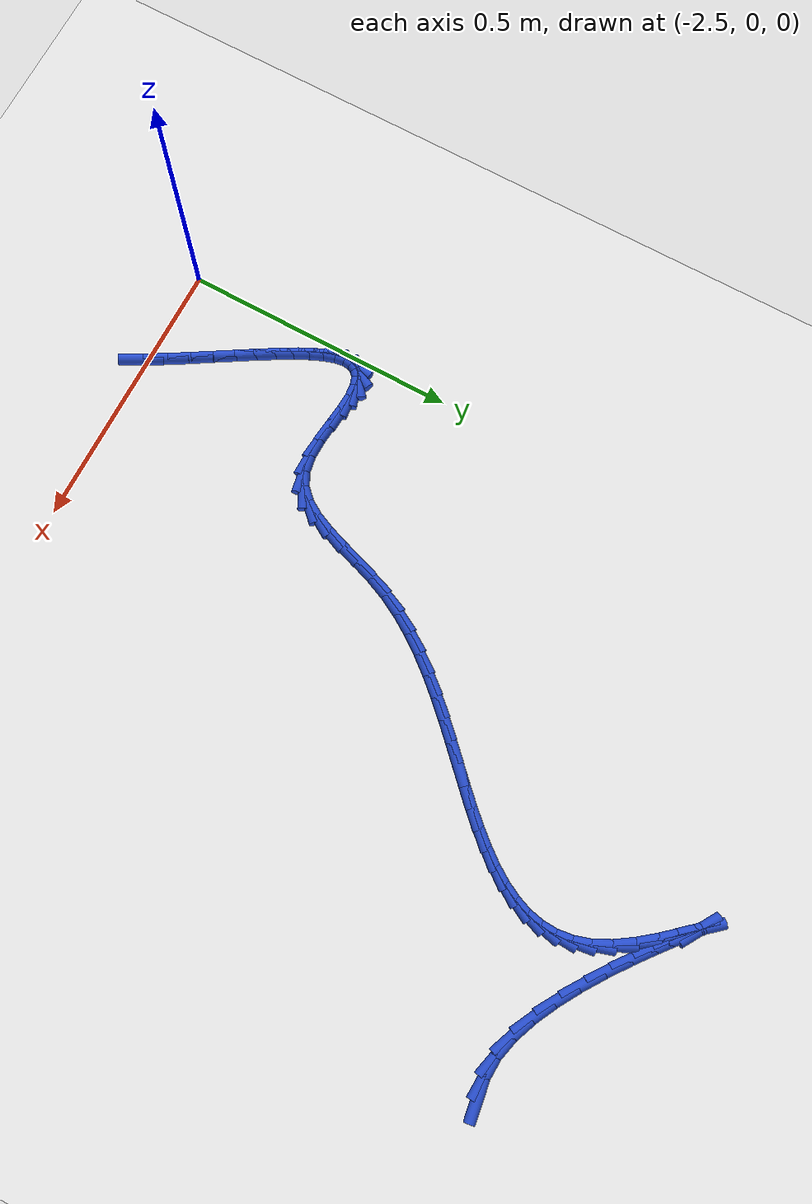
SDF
<sdf version="1.6">
 <world name="default">
  <model name="ground_plane">
   <static>1</static>
   <link name="link">
    <collision name="collision">
     <geometry><plane><normal>0 0 1</normal><size>100 100</size></plane></geometry>
     <surface><friction><ode><mu>100</mu><mu2>50</mu2></ode></friction></surface>
    </collision>
    <visual name="visual">
     <cast_shadows>0</cast_shadows>
     <geometry><plane><normal>0 0 1</normal><size>100 100</size></plane></geometry>
     <material>
      <script><uri>file://media/materials/scripts/gazebo.material</uri><name>Gazebo/WhiteGlow</name></script>
     </material>
    </visual>
   </link>
  </model>
  <model name="line">
   <link name="link_65">
    <pose>-1.4952323141825306 1.088143773224283 0.01 0 1.57 0.14863840914152304</pose>
    <collision name="collision">
     <geometry><cylinder><radius>0.01</radius><length>0.08</length></cylinder></geometry>
    </collision>
    <visual name="visual">
     <material>
      <script><name>Gazebo/Blue</name><uri>file://media/materials/scripts/gazebo.material</uri></script>
     </material>
     <geometry><cylinder><radius>0.01</radius><length>0.08</length></cylinder></geometry>
    </visual>
   </link>
   <link name="link_66">
    <pose>-1.5288726791281757 1.0831063703935677 0.01 0 1.57 -0.04080445315504187</pose>
    <collision name="collision">
     <geometry><cylinder><radius>0.01</radius><length>0.08</length></cylinder></geometry>
    </collision>
    <visual name="visual">
     <material>
      <script><name>Gazebo/Blue</name><uri>file://media/materials/scripts/gazebo.material</uri></script>
     </material>
     <geometry><cylinder><radius>0.01</radius><length>0.08</length></cylinder></geometry>
    </visual>
   </link>
   <link name="link_67">
    <pose>-1.5649392740859536 1.084578865405111 0.01 0 1.57 -0.2337654186073965</pose>
    <collision name="collision">
     <geometry><cylinder><radius>0.01</radius><length>0.08</length></cylinder></geometry>
    </collision>
    <visual name="visual">
     <material>
      <script><name>Gazebo/Blue</name><uri>file://media/materials/scripts/gazebo.material</uri></script>
     </material>
     <geometry><cylinder><radius>0.01</radius><length>0.08</length></cylinder></geometry>
    </visual>
   </link>
   <link name="link_68">
    <pose>-1.6037393155495658 1.0938178822584899 0.01 0 1.57 -0.37672906411097346</pose>
    <collision name="collision">
     <geometry><cylinder><radius>0.01</radius><length>0.08</length></cylinder></geometry>
    </collision>
    <visual name="visual">
     <material>
      <script><name>Gazebo/Blue</name><uri>file://media/materials/scripts/gazebo.material</uri></script>
     </material>
     <geometry><cylinder><radius>0.01</radius><length>0.08</length></cylinder></geometry>
    </visual>
   </link>
   <link name="link_69">
    <pose>-1.6444657523950652 1.1099302750295739 0.01 0 1.57 -0.4747867884725967</pose>
    <collision name="collision">
     <geometry><cylinder><radius>0.01</radius><length>0.08</length></cylinder></geometry>
    </collision>
    <visual name="visual">
     <material>
      <script><name>Gazebo/Blue</name><uri>file://media/materials/scripts/gazebo.material</uri></script>
     </material>
     <geometry><cylinder><radius>0.01</radius><length>0.08</length></cylinder></geometry>
    </visual>
   </link>
   <link name="link_70">
    <pose>-1.6858990548762667 1.1312270978246173 0.01 0 1.57 -0.544703677572929</pose>
    <collision name="collision">
     <geometry><cylinder><radius>0.01</radius><length>0.08</length></cylinder></geometry>
    </collision>
    <visual name="visual">
     <material>
      <script><name>Gazebo/Blue</name><uri>file://media/materials/scripts/gazebo.material</uri></script>
     </material>
     <geometry><cylinder><radius>0.01</radius><length>0.08</length></cylinder></geometry>
    </visual>
   </link>
   <link name="link_71">
    <pose>-1.7268190248066024 1.1560181151197997 0.01 0 1.57 -0.5962721454302685</pose>
    <collision name="collision">
     <geometry><cylinder><radius>0.01</radius><length>0.08</length></cylinder></geometry>
    </collision>
    <visual name="visual">
     <material>
      <script><name>Gazebo/Blue</name><uri>file://media/materials/scripts/gazebo.material</uri></script>
     </material>
     <geometry><cylinder><radius>0.01</radius><length>0.08</length></cylinder></geometry>
    </visual>
   </link>
   <link name="link_72">
    <pose>-1.7660054639995024 1.1826130913912998 0.01 0 1.57 -0.6352219180496846</pose>
    <collision name="collision">
     <geometry><cylinder><radius>0.01</radius><length>0.08</length></cylinder></geometry>
    </collision>
    <visual name="visual">
     <material>
      <script><name>Gazebo/Blue</name><uri>file://media/materials/scripts/gazebo.material</uri></script>
     </material>
     <geometry><cylinder><radius>0.01</radius><length>0.08</length></cylinder></geometry>
    </visual>
   </link>
   <link name="link_73">
    <pose>-1.802238174268398 1.2093217911152956 0.01 0 1.57 -0.6648717432445969</pose>
    <collision name="collision">
     <geometry><cylinder><radius>0.01</radius><length>0.08</length></cylinder></geometry>
    </collision>
    <visual name="visual">
     <material>
      <script><name>Gazebo/Blue</name><uri>file://media/materials/scripts/gazebo.material</uri></script>
     </material>
     <geometry><cylinder><radius>0.01</radius><length>0.08</length></cylinder></geometry>
    </visual>
   </link>
   <link name="link_74">
    <pose>-1.8342969574267207 1.2344539787679671 0.01 0 1.57 -0.6868270817080524</pose>
    <collision name="collision">
     <geometry><cylinder><radius>0.01</radius><length>0.08</length></cylinder></geometry>
    </collision>
    <visual name="visual">
     <material>
      <script><name>Gazebo/Blue</name><uri>file://media/materials/scripts/gazebo.material</uri></script>
     </material>
     <geometry><cylinder><radius>0.01</radius><length>0.08</length></cylinder></geometry>
    </visual>
   </link>
   <link name="link_75">
    <pose>-1.8609616152879005 1.2563194188254925 0.01 0 1.57 -0.7005917761581065</pose>
    <collision name="collision">
     <geometry><cylinder><radius>0.01</radius><length>0.08</length></cylinder></geometry>
    </collision>
    <visual name="visual">
     <material>
      <script><name>Gazebo/Blue</name><uri>file://media/materials/scripts/gazebo.material</uri></script>
     </material>
     <geometry><cylinder><radius>0.01</radius><length>0.08</length></cylinder></geometry>
    </visual>
   </link>
   <link name="link_76">
    <pose>-1.8810119496653688 1.2732278757640503 0.01 0 1.57 -0.6986576947608345</pose>
    <collision name="collision">
     <geometry><cylinder><radius>0.01</radius><length>0.08</length></cylinder></geometry>
    </collision>
    <visual name="visual">
     <material>
      <script><name>Gazebo/Blue</name><uri>file://media/materials/scripts/gazebo.material</uri></script>
     </material>
     <geometry><cylinder><radius>0.01</radius><length>0.08</length></cylinder></geometry>
    </visual>
   </link>
   <link name="link_77">
    <pose>-1.893227762372557 1.2834891140598201 0.01 0 1.57 -0.5467058913655953</pose>
    <collision name="collision">
     <geometry><cylinder><radius>0.01</radius><length>0.08</length></cylinder></geometry>
    </collision>
    <visual name="visual">
     <material>
      <script><name>Gazebo/Blue</name><uri>file://media/materials/scripts/gazebo.material</uri></script>
     </material>
     <geometry><cylinder><radius>0.01</radius><length>0.08</length></cylinder></geometry>
    </visual>
   </link>
   <link name="link_78">
    <pose>-1.8963888552228956 1.28541289818898 0.01 0 1.57 -0.8507442898011937</pose>
    <collision name="collision">
     <geometry><cylinder><radius>0.01</radius><length>0.08</length></cylinder></geometry>
    </collision>
    <visual name="visual">
     <material>
      <script><name>Gazebo/Blue</name><uri>file://media/materials/scripts/gazebo.material</uri></script>
     </material>
     <geometry><cylinder><radius>0.01</radius><length>0.08</length></cylinder></geometry>
    </visual>
   </link>
   <link name="link_79">
    <pose>-1.8892967962554643 1.2773276466880934 0.01 0 1.57 -0.8279606788155391</pose>
    <collision name="collision">
     <geometry><cylinder><radius>0.01</radius><length>0.08</length></cylinder></geometry>
    </collision>
    <visual name="visual">
     <material>
      <script><name>Gazebo/Blue</name><uri>file://media/materials/scripts/gazebo.material</uri></script>
     </material>
     <geometry><cylinder><radius>0.01</radius><length>0.08</length></cylinder></geometry>
    </visual>
   </link>
   <link name="link_80">
    <pose>-1.8725963171163258 1.2591414036005881 0.01 0 1.57 -0.8513580426529674</pose>
    <collision name="collision">
     <geometry><cylinder><radius>0.01</radius><length>0.08</length></cylinder></geometry>
    </collision>
    <visual name="visual">
     <material>
      <script><name>Gazebo/Blue</name><uri>file://media/materials/scripts/gazebo.material</uri></script>
     </material>
     <geometry><cylinder><radius>0.01</radius><length>0.08</length></cylinder></geometry>
    </visual>
   </link>
   <link name="link_81">
    <pose>-1.8501501253995605 1.2335200782341098 0.01 0 1.57 -0.8977788510176192</pose>
    <collision name="collision">
     <geometry><cylinder><radius>0.01</radius><length>0.08</length></cylinder></geometry>
    </collision>
    <visual name="visual">
     <material>
      <script><name>Gazebo/Blue</name><uri>file://media/materials/scripts/gazebo.material</uri></script>
     </material>
     <geometry><cylinder><radius>0.01</radius><length>0.08</length></cylinder></geometry>
    </visual>
   </link>
   <link name="link_82">
    <pose>-1.826144719080286 1.2034070742776062 0.01 0 1.57 -0.9768980740927216</pose>
    <collision name="collision">
     <geometry><cylinder><radius>0.01</radius><length>0.08</length></cylinder></geometry>
    </collision>
    <visual name="visual">
     <material>
      <script><name>Gazebo/Blue</name><uri>file://media/materials/scripts/gazebo.material</uri></script>
     </material>
     <geometry><cylinder><radius>0.01</radius><length>0.08</length></cylinder></geometry>
    </visual>
   </link>
   <link name="link_83">
    <pose>-1.8047664356165989 1.1717456892720026 0.01 0 1.57 -1.1059233749537078</pose>
    <collision name="collision">
     <geometry><cylinder><radius>0.01</radius><length>0.08</length></cylinder></geometry>
    </collision>
    <visual name="visual">
     <material>
      <script><name>Gazebo/Blue</name><uri>file://media/materials/scripts/gazebo.material</uri></script>
     </material>
     <geometry><cylinder><radius>0.01</radius><length>0.08</length></cylinder></geometry>
    </visual>
   </link>
   <link name="link_84">
    <pose>-1.7892817275521453 1.1408709116420577 0.01 0 1.57 -1.2649261991113017</pose>
    <collision name="collision">
     <geometry><cylinder><radius>0.01</radius><length>0.08</length></cylinder></geometry>
    </collision>
    <visual name="visual">
     <material>
      <script><name>Gazebo/Blue</name><uri>file://media/materials/scripts/gazebo.material</uri></script>
     </material>
     <geometry><cylinder><radius>0.01</radius><length>0.08</length></cylinder></geometry>
    </visual>
   </link>
   <link name="link_85">
    <pose>-1.7798740317023674 1.1110789676333859 0.01 0 1.57 -1.440046391044502</pose>
    <collision name="collision">
     <geometry><cylinder><radius>0.01</radius><length>0.08</length></cylinder></geometry>
    </collision>
    <visual name="visual">
     <material>
      <script><name>Gazebo/Blue</name><uri>file://media/materials/scripts/gazebo.material</uri></script>
     </material>
     <geometry><cylinder><radius>0.01</radius><length>0.08</length></cylinder></geometry>
    </visual>
   </link>
   <link name="link_86">
    <pose>-1.7760816310046459 1.0822394507909352 0.01 0 1.57 1.5222513761128595</pose>
    <collision name="collision">
     <geometry><cylinder><radius>0.01</radius><length>0.08</length></cylinder></geometry>
    </collision>
    <visual name="visual">
     <material>
      <script><name>Gazebo/Blue</name><uri>file://media/materials/scripts/gazebo.material</uri></script>
     </material>
     <geometry><cylinder><radius>0.01</radius><length>0.08</length></cylinder></geometry>
    </visual>
   </link>
   <link name="link_87">
    <pose>-1.7774428083963647 1.0542219546596556 0.01 0 1.57 1.3528033173011629</pose>
    <collision name="collision">
     <geometry><cylinder><radius>0.01</radius><length>0.08</length></cylinder></geometry>
    </collision>
    <visual name="visual">
     <material>
      <script><name>Gazebo/Blue</name><uri>file://media/materials/scripts/gazebo.material</uri></script>
     </material>
     <geometry><cylinder><radius>0.01</radius><length>0.08</length></cylinder></geometry>
    </visual>
   </link>
   <link name="link_88">
    <pose>-1.7834958468149062 1.026896072784496 0.01 0 1.57 1.2039780633169195</pose>
    <collision name="collision">
     <geometry><cylinder><radius>0.01</radius><length>0.08</length></cylinder></geometry>
    </collision>
    <visual name="visual">
     <material>
      <script><name>Gazebo/Blue</name><uri>file://media/materials/scripts/gazebo.material</uri></script>
     </material>
     <geometry><cylinder><radius>0.01</radius><length>0.08</length></cylinder></geometry>
    </visual>
   </link>
   <link name="link_89">
    <pose>-1.7937790291976528 1.0001313987104055 0.01 0 1.57 1.0806357029912346</pose>
    <collision name="collision">
     <geometry><cylinder><radius>0.01</radius><length>0.08</length></cylinder></geometry>
    </collision>
    <visual name="visual">
     <material>
      <script><name>Gazebo/Blue</name><uri>file://media/materials/scripts/gazebo.material</uri></script>
     </material>
     <geometry><cylinder><radius>0.01</radius><length>0.08</length></cylinder></geometry>
    </visual>
   </link>
   <link name="link_90">
    <pose>-1.8078306384819864 0.9737975259823336 0.01 0 1.57 0.9827227969631482</pose>
    <collision name="collision">
     <geometry><cylinder><radius>0.01</radius><length>0.08</length></cylinder></geometry>
    </collision>
    <visual name="visual">
     <material>
      <script><name>Gazebo/Blue</name><uri>file://media/materials/scripts/gazebo.material</uri></script>
     </material>
     <geometry><cylinder><radius>0.01</radius><length>0.08</length></cylinder></geometry>
    </visual>
   </link>
   <link name="link_91">
    <pose>-1.8251889576052907 0.94776404814523 0.01 0 1.57 0.907654303068371</pose>
    <collision name="collision">
     <geometry><cylinder><radius>0.01</radius><length>0.08</length></cylinder></geometry>
    </collision>
    <visual name="visual">
     <material>
      <script><name>Gazebo/Blue</name><uri>file://media/materials/scripts/gazebo.material</uri></script>
     </material>
     <geometry><cylinder><radius>0.01</radius><length>0.08</length></cylinder></geometry>
    </visual>
   </link>
   <link name="link_92">
    <pose>-1.8453922695049472 0.9219005587440424 0.01 0 1.57 0.8521710202685989</pose>
    <collision name="collision">
     <geometry><cylinder><radius>0.01</radius><length>0.08</length></cylinder></geometry>
    </collision>
    <visual name="visual">
     <material>
      <script><name>Gazebo/Blue</name><uri>file://media/materials/scripts/gazebo.material</uri></script>
     </material>
     <geometry><cylinder><radius>0.01</radius><length>0.08</length></cylinder></geometry>
    </visual>
   </link>
   <link name="link_93">
    <pose>-1.8679788571183393 0.8960766513237215 0.01 0 1.57 0.813286713102715</pose>
    <collision name="collision">
     <geometry><cylinder><radius>0.01</radius><length>0.08</length></cylinder></geometry>
    </collision>
    <visual name="visual">
     <material>
      <script><name>Gazebo/Blue</name><uri>file://media/materials/scripts/gazebo.material</uri></script>
     </material>
     <geometry><cylinder><radius>0.01</radius><length>0.08</length></cylinder></geometry>
    </visual>
   </link>
   <link name="link_94">
    <pose>-1.8924870033828485 0.8701619194292155 0.01 0 1.57 0.7886219954989145</pose>
    <collision name="collision">
     <geometry><cylinder><radius>0.01</radius><length>0.08</length></cylinder></geometry>
    </collision>
    <visual name="visual">
     <material>
      <script><name>Gazebo/Blue</name><uri>file://media/materials/scripts/gazebo.material</uri></script>
     </material>
     <geometry><cylinder><radius>0.01</radius><length>0.08</length></cylinder></geometry>
    </visual>
   </link>
   <link name="link_95">
    <pose>-1.918454991235858 0.8440259566054742 0.01 0 1.57 0.7764465047337329</pose>
    <collision name="collision">
     <geometry><cylinder><radius>0.01</radius><length>0.08</length></cylinder></geometry>
    </collision>
    <visual name="visual">
     <material>
      <script><name>Gazebo/Blue</name><uri>file://media/materials/scripts/gazebo.material</uri></script>
     </material>
     <geometry><cylinder><radius>0.01</radius><length>0.08</length></cylinder></geometry>
    </visual>
   </link>
   <link name="link_96">
    <pose>-1.9454211036147502 0.8175383563974465 0.01 0 1.57 0.7756159414451039</pose>
    <collision name="collision">
     <geometry><cylinder><radius>0.01</radius><length>0.08</length></cylinder></geometry>
    </collision>
    <visual name="visual">
     <material>
      <script><name>Gazebo/Blue</name><uri>file://media/materials/scripts/gazebo.material</uri></script>
     </material>
     <geometry><cylinder><radius>0.01</radius><length>0.08</length></cylinder></geometry>
    </visual>
   </link>
   <link name="link_97">
    <pose>-1.972923623456908 0.790568712350082 0.01 0 1.57 0.7854867087293953</pose>
    <collision name="collision">
     <geometry><cylinder><radius>0.01</radius><length>0.08</length></cylinder></geometry>
    </collision>
    <visual name="visual">
     <material>
      <script><name>Gazebo/Blue</name><uri>file://media/materials/scripts/gazebo.material</uri></script>
     </material>
     <geometry><cylinder><radius>0.01</radius><length>0.08</length></cylinder></geometry>
    </visual>
   </link>
   <link name="link_98">
    <pose>-2.0005008336997134 0.7629866180083295 0.01 0 1.57 0.8058360045946583</pose>
    <collision name="collision">
     <geometry><cylinder><radius>0.01</radius><length>0.08</length></cylinder></geometry>
    </collision>
    <visual name="visual">
     <material>
      <script><name>Gazebo/Blue</name><uri>file://media/materials/scripts/gazebo.material</uri></script>
     </material>
     <geometry><cylinder><radius>0.01</radius><length>0.08</length></cylinder></geometry>
    </visual>
   </link>
   <link name="link_99">
    <pose>-2.0276910172805485 0.7346616669171381 0.01 0 1.57 0.8367895351429446</pose>
    <collision name="collision">
     <geometry><cylinder><radius>0.01</radius><length>0.08</length></cylinder></geometry>
    </collision>
    <visual name="visual">
     <material>
      <script><name>Gazebo/Blue</name><uri>file://media/materials/scripts/gazebo.material</uri></script>
     </material>
     <geometry><cylinder><radius>0.01</radius><length>0.08</length></cylinder></geometry>
    </visual>
   </link>
   <link name="link_100">
    <pose>-2.054032457136797 0.7054634526214576 0.01 0 1.57 0.8787461518988959</pose>
    <collision name="collision">
     <geometry><cylinder><radius>0.01</radius><length>0.08</length></cylinder></geometry>
    </collision>
    <visual name="visual">
     <material>
      <script><name>Gazebo/Blue</name><uri>file://media/materials/scripts/gazebo.material</uri></script>
     </material>
     <geometry><cylinder><radius>0.01</radius><length>0.08</length></cylinder></geometry>
    </visual>
   </link>
   <link name="link_101">
    <pose>-2.0790634362058404 0.6752615686662365 0.01 0 1.57 0.9322801814065428</pose>
    <collision name="collision">
     <geometry><cylinder><radius>0.01</radius><length>0.08</length></cylinder></geometry>
    </collision>
    <visual name="visual">
     <material>
      <script><name>Gazebo/Blue</name><uri>file://media/materials/scripts/gazebo.material</uri></script>
     </material>
     <geometry><cylinder><radius>0.01</radius><length>0.08</length></cylinder></geometry>
    </visual>
   </link>
   <link name="link_102">
    <pose>-2.102322237425062 0.6439256085964251 0.01 0 1.57 0.9979956198062797</pose>
    <collision name="collision">
     <geometry><cylinder><radius>0.01</radius><length>0.08</length></cylinder></geometry>
    </collision>
    <visual name="visual">
     <material>
      <script><name>Gazebo/Blue</name><uri>file://media/materials/scripts/gazebo.material</uri></script>
     </material>
     <geometry><cylinder><radius>0.01</radius><length>0.08</length></cylinder></geometry>
    </visual>
   </link>
   <link name="link_103">
    <pose>-2.123347143731843 0.6113251659569713 0.01 0 1.57 1.0763051854492525</pose>
    <collision name="collision">
     <geometry><cylinder><radius>0.01</radius><length>0.08</length></cylinder></geometry>
    </collision>
    <visual name="visual">
     <material>
      <script><name>Gazebo/Blue</name><uri>file://media/materials/scripts/gazebo.material</uri></script>
     </material>
     <geometry><cylinder><radius>0.01</radius><length>0.08</length></cylinder></geometry>
    </visual>
   </link>
   <link name="link_104">
    <pose>-2.1416764380635684 0.577329834292825 0.01 0 1.57 1.1635208819083311</pose>
    <collision name="collision">
     <geometry><cylinder><radius>0.01</radius><length>0.08</length></cylinder></geometry>
    </collision>
    <visual name="visual">
     <material>
      <script><name>Gazebo/Blue</name><uri>file://media/materials/scripts/gazebo.material</uri></script>
     </material>
     <geometry><cylinder><radius>0.01</radius><length>0.08</length></cylinder></geometry>
    </visual>
   </link>
   <link name="link_105">
    <pose>-2.1569602011742504 0.54190120153566 0.01 0 1.57 1.2265846920467955</pose>
    <collision name="collision">
     <geometry><cylinder><radius>0.01</radius><length>0.08</length></cylinder></geometry>
    </collision>
    <visual name="visual">
     <material>
      <script><name>Gazebo/Blue</name><uri>file://media/materials/scripts/gazebo.material</uri></script>
     </material>
     <geometry><cylinder><radius>0.01</radius><length>0.08</length></cylinder></geometry>
    </visual>
   </link>
   <link name="link_106">
    <pose>-2.169883137722879 0.505852210272328 0.01 0 1.57 1.2488353614568997</pose>
    <collision name="collision">
     <geometry><cylinder><radius>0.01</radius><length>0.08</length></cylinder></geometry>
    </collision>
    <visual name="visual">
     <material>
      <script><name>Gazebo/Blue</name><uri>file://media/materials/scripts/gazebo.material</uri></script>
     </material>
     <geometry><cylinder><radius>0.01</radius><length>0.08</length></cylinder></geometry>
    </visual>
   </link>
   <link name="link_107">
    <pose>-2.181689948867531 0.4704566039894981 0.01 0 1.57 1.2280510982424013</pose>
    <collision name="collision">
     <geometry><cylinder><radius>0.01</radius><length>0.08</length></cylinder></geometry>
    </collision>
    <visual name="visual">
     <material>
      <script><name>Gazebo/Blue</name><uri>file://media/materials/scripts/gazebo.material</uri></script>
     </material>
     <geometry><cylinder><radius>0.01</radius><length>0.08</length></cylinder></geometry>
    </visual>
   </link>
   <link name="link_108">
    <pose>-2.193630842843828 0.43699265774910906 0.01 0 1.57 1.1559178790255429</pose>
    <collision name="collision">
     <geometry><cylinder><radius>0.01</radius><length>0.08</length></cylinder></geometry>
    </collision>
    <visual name="visual">
     <material>
      <script><name>Gazebo/Blue</name><uri>file://media/materials/scripts/gazebo.material</uri></script>
     </material>
     <geometry><cylinder><radius>0.01</radius><length>0.08</length></cylinder></geometry>
    </visual>
   </link>
   <link name="link_109">
    <pose>-2.206956027887388 0.4067386466130991 0.01 0 1.57 1.0162243771514408</pose>
    <collision name="collision">
     <geometry><cylinder><radius>0.01</radius><length>0.08</length></cylinder></geometry>
    </collision>
    <visual name="visual">
     <material>
      <script><name>Gazebo/Blue</name><uri>file://media/materials/scripts/gazebo.material</uri></script>
     </material>
     <geometry><cylinder><radius>0.01</radius><length>0.08</length></cylinder></geometry>
    </visual>
   </link>
   <link name="link_110">
    <pose>-2.222915712233831 0.3809728456434067 0.01 0 1.57 0.7892864329630651</pose>
    <collision name="collision">
     <geometry><cylinder><radius>0.01</radius><length>0.08</length></cylinder></geometry>
    </collision>
    <visual name="visual">
     <material>
      <script><name>Gazebo/Blue</name><uri>file://media/materials/scripts/gazebo.material</uri></script>
     </material>
     <geometry><cylinder><radius>0.01</radius><length>0.08</length></cylinder></geometry>
    </visual>
   </link>
   <link name="link_111">
    <pose>-2.242760104118776 0.36097352990197 0.01 0 1.57 0.47842828376889696</pose>
    <collision name="collision">
     <geometry><cylinder><radius>0.01</radius><length>0.08</length></cylinder></geometry>
    </collision>
    <visual name="visual">
     <material>
      <script><name>Gazebo/Blue</name><uri>file://media/materials/scripts/gazebo.material</uri></script>
     </material>
     <geometry><cylinder><radius>0.01</radius><length>0.08</length></cylinder></geometry>
    </visual>
   </link>
   <link name="link_112">
    <pose>-2.2677393561894745 0.3480189208725593 0.01 0 1.57 0.17340007616247288</pose>
    <collision name="collision">
     <geometry><cylinder><radius>0.01</radius><length>0.08</length></cylinder></geometry>
    </collision>
    <visual name="visual">
     <material>
      <script><name>Gazebo/Blue</name><uri>file://media/materials/scripts/gazebo.material</uri></script>
     </material>
     <geometry><cylinder><radius>0.01</radius><length>0.08</length></cylinder></geometry>
    </visual>
   </link>
   <link name="link_113">
    <pose>-2.29834676484868 0.3426577534082065 0.01 0 1.57 -0.006483949664006875</pose>
    <collision name="collision">
     <geometry><cylinder><radius>0.01</radius><length>0.08</length></cylinder></geometry>
    </collision>
    <visual name="visual">
     <material>
      <script><name>Gazebo/Blue</name><uri>file://media/materials/scripts/gazebo.material</uri></script>
     </material>
     <geometry><cylinder><radius>0.01</radius><length>0.08</length></cylinder></geometry>
    </visual>
   </link>
   <link name="link_114">
    <pose>-2.3324194948494767 0.3428786823705249 0.01 0 1.57 -0.09258086509010975</pose>
    <collision name="collision">
     <geometry><cylinder><radius>0.01</radius><length>0.08</length></cylinder></geometry>
    </collision>
    <visual name="visual">
     <material>
      <script><name>Gazebo/Blue</name><uri>file://media/materials/scripts/gazebo.material</uri></script>
     </material>
     <geometry><cylinder><radius>0.01</radius><length>0.08</length></cylinder></geometry>
    </visual>
   </link>
   <link name="link_115">
    <pose>-2.3672123598480104 0.34610907064170787 0.01 0 1.57 -0.11145125431924605</pose>
    <collision name="collision">
     <geometry><cylinder><radius>0.01</radius><length>0.08</length></cylinder></geometry>
    </collision>
    <visual name="visual">
     <material>
      <script><name>Gazebo/Blue</name><uri>file://media/materials/scripts/gazebo.material</uri></script>
     </material>
     <geometry><cylinder><radius>0.01</radius><length>0.08</length></cylinder></geometry>
    </visual>
   </link>
   <link name="link_116">
    <pose>-2.3999801735004267 0.34977628110394854 0.01 0 1.57 -0.055967577990174565</pose>
    <collision name="collision">
     <geometry><cylinder><radius>0.01</radius><length>0.08</length></cylinder></geometry>
    </collision>
    <visual name="visual">
     <material>
      <script><name>Gazebo/Blue</name><uri>file://media/materials/scripts/gazebo.material</uri></script>
     </material>
     <geometry><cylinder><radius>0.01</radius><length>0.08</length></cylinder></geometry>
    </visual>
   </link>
   <link name="link_117">
    <pose>-2.4280239166544972 0.35134746233561376 0.01 0 1.57 0.0841018877141556</pose>
    <collision name="collision">
     <geometry><cylinder><radius>0.01</radius><length>0.08</length></cylinder></geometry>
    </collision>
    <visual name="visual">
     <material>
      <script><name>Gazebo/Blue</name><uri>file://media/materials/scripts/gazebo.material</uri></script>
     </material>
     <geometry><cylinder><radius>0.01</radius><length>0.08</length></cylinder></geometry>
    </visual>
   </link>
   <link name="link_118">
    <pose>-2.4500391352287125 0.3494915631598703 0.01 0 1.57 0.31049102212085244</pose>
    <collision name="collision">
     <geometry><cylinder><radius>0.01</radius><length>0.08</length></cylinder></geometry>
    </collision>
    <visual name="visual">
     <material>
      <script><name>Gazebo/Blue</name><uri>file://media/materials/scripts/gazebo.material</uri></script>
     </material>
     <geometry><cylinder><radius>0.01</radius><length>0.08</length></cylinder></geometry>
    </visual>
   </link>
   <link name="link_119">
    <pose>-2.466330444666444 0.3442641870562465 0.01 0 1.57 0.6576666086372092</pose>
    <collision name="collision">
     <geometry><cylinder><radius>0.01</radius><length>0.08</length></cylinder></geometry>
    </collision>
    <visual name="visual">
     <material>
      <script><name>Gazebo/Blue</name><uri>file://media/materials/scripts/gazebo.material</uri></script>
     </material>
     <geometry><cylinder><radius>0.01</radius><length>0.08</length></cylinder></geometry>
    </visual>
   </link>
   <link name="link_120">
    <pose>-2.4772918039724208 0.33579793148337106 0.01 0 1.57 1.09075692221055</pose>
    <collision name="collision">
     <geometry><cylinder><radius>0.01</radius><length>0.08</length></cylinder></geometry>
    </collision>
    <visual name="visual">
     <material>
      <script><name>Gazebo/Blue</name><uri>file://media/materials/scripts/gazebo.material</uri></script>
     </material>
     <geometry><cylinder><radius>0.01</radius><length>0.08</length></cylinder></geometry>
    </visual>
   </link>
   <link name="link_121">
    <pose>-2.4833171721513727 0.3242253938998721 0.01 0 1.57 1.4691736304343372</pose>
    <collision name="collision">
     <geometry><cylinder><radius>0.01</radius><length>0.08</length></cylinder></geometry>
    </collision>
    <visual name="visual">
     <material>
      <script><name>Gazebo/Blue</name><uri>file://media/materials/scripts/gazebo.material</uri></script>
     </material>
     <geometry><cylinder><radius>0.01</radius><length>0.08</length></cylinder></geometry>
    </visual>
   </link>
   <link name="link_122">
    <pose>-2.4848005082080276 0.30967917176437804 0.01 0 1.57 -1.4187220073339537</pose>
    <collision name="collision">
     <geometry><cylinder><radius>0.01</radius><length>0.08</length></cylinder></geometry>
    </collision>
    <visual name="visual">
     <material>
      <script><name>Gazebo/Blue</name><uri>file://media/materials/scripts/gazebo.material</uri></script>
     </material>
     <geometry><cylinder><radius>0.01</radius><length>0.08</length></cylinder></geometry>
    </visual>
   </link>
   <link name="link_123">
    <pose>-2.4821357711471146 0.29229186253551726 0.01 0 1.57 -1.2616263191111812</pose>
    <collision name="collision">
     <geometry><cylinder><radius>0.01</radius><length>0.08</length></cylinder></geometry>
    </collision>
    <visual name="visual">
     <material>
      <script><name>Gazebo/Blue</name><uri>file://media/materials/scripts/gazebo.material</uri></script>
     </material>
     <geometry><cylinder><radius>0.01</radius><length>0.08</length></cylinder></geometry>
    </visual>
   </link>
   <link name="link_124">
    <pose>-2.4757169199733626 0.2721960636719179 0.01 0 1.57 -1.1635753939124291</pose>
    <collision name="collision">
     <geometry><cylinder><radius>0.01</radius><length>0.08</length></cylinder></geometry>
    </collision>
    <visual name="visual">
     <material>
      <script><name>Gazebo/Blue</name><uri>file://media/materials/scripts/gazebo.material</uri></script>
     </material>
     <geometry><cylinder><radius>0.01</radius><length>0.08</length></cylinder></geometry>
    </visual>
   </link>
   <link name="link_125">
    <pose>-2.465937913691501 0.2495243726322082 0.01 0 1.57 -1.1011874072819747</pose>
    <collision name="collision">
     <geometry><cylinder><radius>0.01</radius><length>0.08</length></cylinder></geometry>
    </collision>
    <visual name="visual">
     <material>
      <script><name>Gazebo/Blue</name><uri>file://media/materials/scripts/gazebo.material</uri></script>
     </material>
     <geometry><cylinder><radius>0.01</radius><length>0.08</length></cylinder></geometry>
    </visual>
   </link>
   <link name="link_126">
    <pose>-2.4531927113062566 0.2244093868750166 0.01 0 1.57 -1.0614452011310536</pose>
    <collision name="collision">
     <geometry><cylinder><radius>0.01</radius><length>0.08</length></cylinder></geometry>
    </collision>
    <visual name="visual">
     <material>
      <script><name>Gazebo/Blue</name><uri>file://media/materials/scripts/gazebo.material</uri></script>
     </material>
     <geometry><cylinder><radius>0.01</radius><length>0.08</length></cylinder></geometry>
    </visual>
   </link>
   <link name="link_127">
    <pose>-2.4378752718223606 0.19698370385897152 0.01 0 1.57 -1.0370237123428556</pose>
    <collision name="collision">
     <geometry><cylinder><radius>0.01</radius><length>0.08</length></cylinder></geometry>
    </collision>
    <visual name="visual">
     <material>
      <script><name>Gazebo/Blue</name><uri>file://media/materials/scripts/gazebo.material</uri></script>
     </material>
     <geometry><cylinder><radius>0.01</radius><length>0.08</length></cylinder></geometry>
    </visual>
   </link>
   <link name="link_128">
    <pose>-2.4203795542445397 0.1673799210427011 0.01 0 1.57 -1.0236558802685027</pose>
    <collision name="collision">
     <geometry><cylinder><radius>0.01</radius><length>0.08</length></cylinder></geometry>
    </collision>
    <visual name="visual">
     <material>
      <script><name>Gazebo/Blue</name><uri>file://media/materials/scripts/gazebo.material</uri></script>
     </material>
     <geometry><cylinder><radius>0.01</radius><length>0.08</length></cylinder></geometry>
    </visual>
   </link>
   <link name="link_129">
    <pose>-2.4010995175775243 0.13573063588483383 0.01 0 1.57 -1.0187796229935193</pose>
    <collision name="collision">
     <geometry><cylinder><radius>0.01</radius><length>0.08</length></cylinder></geometry>
    </collision>
    <visual name="visual">
     <material>
      <script><name>Gazebo/Blue</name><uri>file://media/materials/scripts/gazebo.material</uri></script>
     </material>
     <geometry><cylinder><radius>0.01</radius><length>0.08</length></cylinder></geometry>
    </visual>
   </link>
   <link name="link_130">
    <pose>-2.380429120826042 0.10216844584399784 0.01 0 1.57 -1.0208348163915297</pose>
    <collision name="collision">
     <geometry><cylinder><radius>0.01</radius><length>0.08</length></cylinder></geometry>
    </collision>
    <visual name="visual">
     <material>
      <script><name>Gazebo/Blue</name><uri>file://media/materials/scripts/gazebo.material</uri></script>
     </material>
     <geometry><cylinder><radius>0.01</radius><length>0.08</length></cylinder></geometry>
    </visual>
   </link>
   <link name="link_131">
    <pose>-2.3587623229948216 0.06682594837882154 0.01 0 1.57 -1.0288850136295984</pose>
    <collision name="collision">
     <geometry><cylinder><radius>0.01</radius><length>0.08</length></cylinder></geometry>
    </collision>
    <visual name="visual">
     <material>
      <script><name>Gazebo/Blue</name><uri>file://media/materials/scripts/gazebo.material</uri></script>
     </material>
     <geometry><cylinder><radius>0.01</radius><length>0.08</length></cylinder></geometry>
    </visual>
   </link>
   <link name="link_132">
    <pose>-2.3364930830885933 0.029835740947933356 0.01 0 1.57 -1.0424063574561027</pose>
    <collision name="collision">
     <geometry><cylinder><radius>0.01</radius><length>0.08</length></cylinder></geometry>
    </collision>
    <visual name="visual">
     <material>
      <script><name>Gazebo/Blue</name><uri>file://media/materials/scripts/gazebo.material</uri></script>
     </material>
     <geometry><cylinder><radius>0.01</radius><length>0.08</length></cylinder></geometry>
    </visual>
   </link>
   <link name="link_133">
    <pose>-2.3140153601120854 -0.008669578990038493 0.01 0 1.57 -1.0611661155877992</pose>
    <collision name="collision">
     <geometry><cylinder><radius>0.01</radius><length>0.08</length></cylinder></geometry>
    </collision>
    <visual name="visual">
     <material>
      <script><name>Gazebo/Blue</name><uri>file://media/materials/scripts/gazebo.material</uri></script>
     </material>
     <geometry><cylinder><radius>0.01</radius><length>0.08</length></cylinder></geometry>
    </visual>
   </link>
  </model>
 </world>
</sdf>
